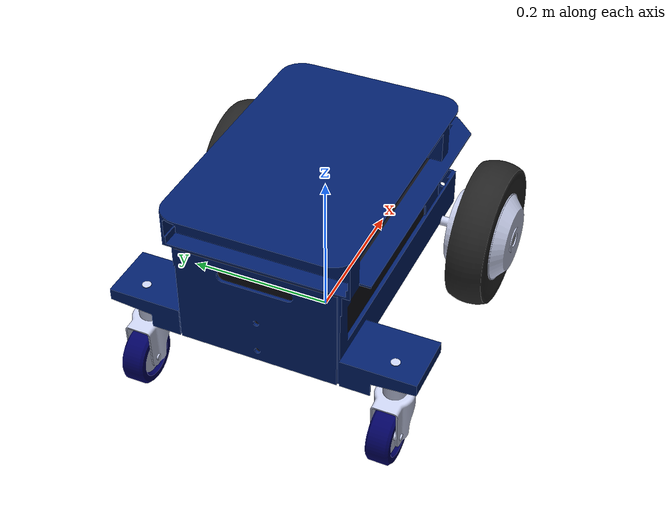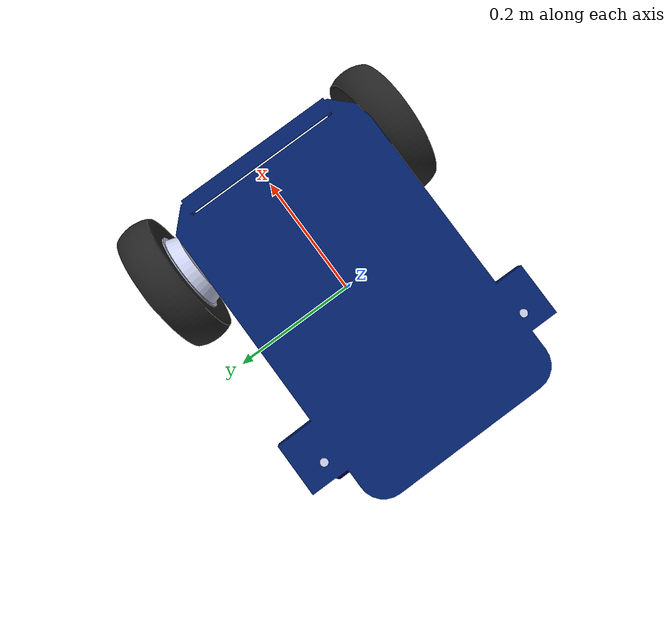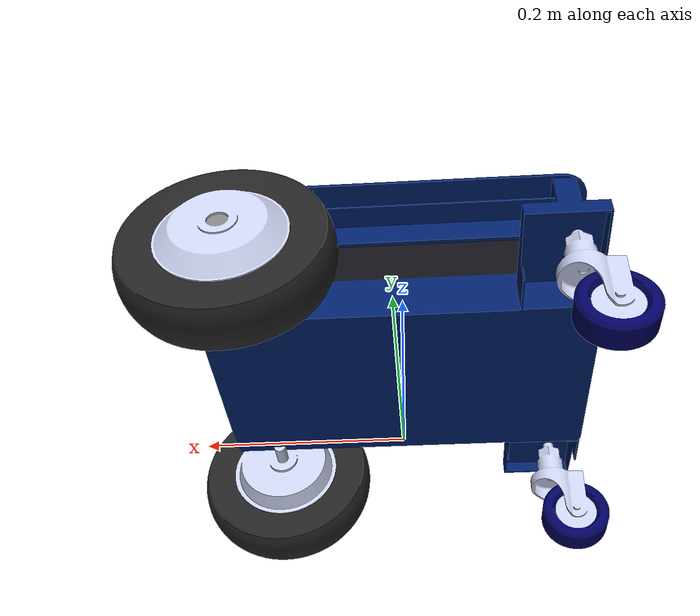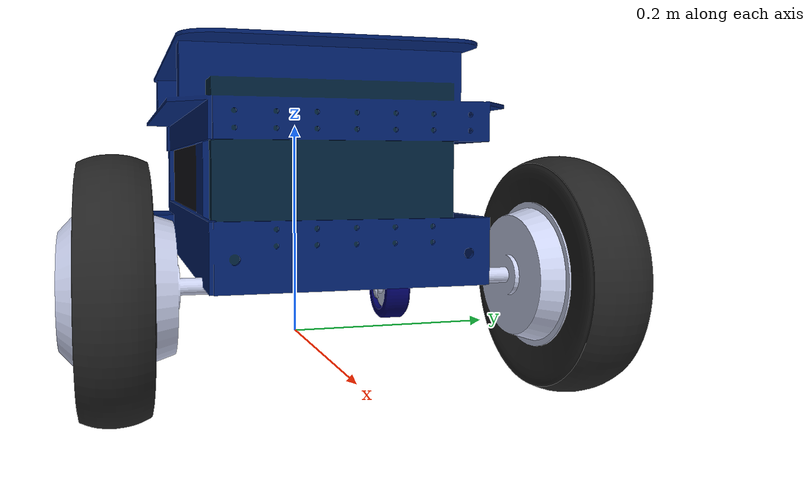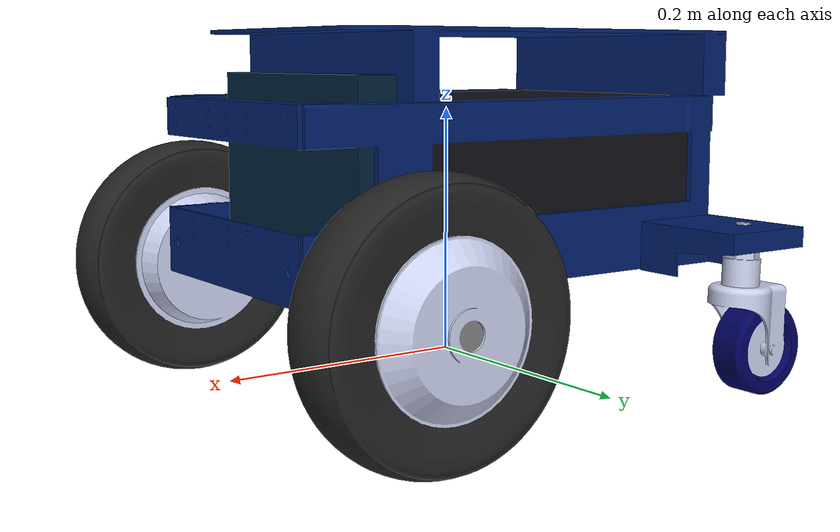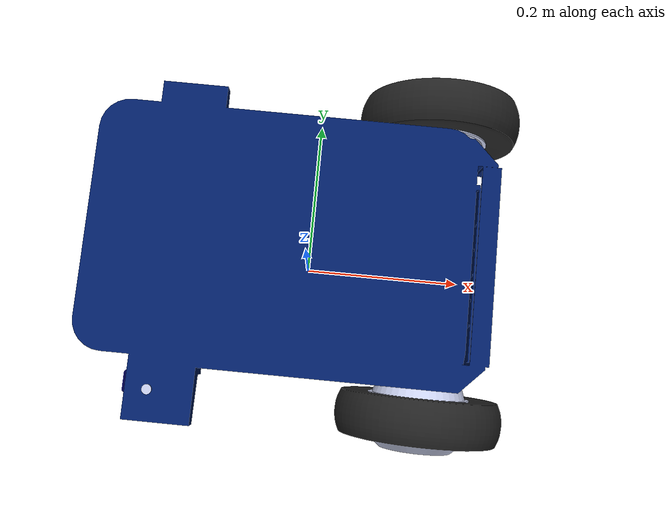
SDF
<?xml version="1.0" ?>
<sdf version="1.9" >

<model name='magni' >
  <link name="base_footprint" />
  <joint name="base_footprint_joint" type="fixed" >
    <parent>base_footprint</parent>
    <child>base_link</child>
  </joint>
  <link name="base_link" >
      <pose>0 0 0.07 0 0 0</pose>
      <inertial>
        <mass>10.0</mass>
        <pose>-0.15 0 0.03 0 0 0 </pose>
        <inertia>
          <ixx>0.059450809553</ixx>
          <ixy>0.0</ixy>
          <ixz>0.0</ixz>
          <iyy>0.150753273032</iyy>
          <iyz>0.0</iyz>
          <izz>0.17270409758500002</izz>
        </inertia>
      </inertial>

      <visual name='base_visual'>
          <geometry>
            <mesh>
              <uri>model://magni/meshes/magni_body.dae</uri>
            </mesh>
          </geometry>
      </visual>

      <collision name='base_collider_1'>
        <pose>0 0 0.05099999999999999 0 0 0</pose>
        <geometry>
          <box> <size>0.398 0.268 0.160</size></box>
        </geometry>
      </collision>

      <collision name='base_collider_2'>
        <pose>-0.026 0 0.148 0 0 0</pose>
        <geometry>
          <box> <size>0.375 0.268 0.034</size></box>
        </geometry>
      </collision>

      <collision name='base_collider_3'>
        <pose>-0.169 0.169 0.0059999999999999915 0 0 0</pose>
        <geometry>
          <box><size>0.1 0.07 0.07</size></box>
        </geometry>
      </collision>

      <collision name='base_collider_4'>
        <pose>-0.169 -0.169 0.0059999999999999915 0 0 0</pose>
        <geometry>
          <box><size>0.1 0.07 0.07</size></box>
        </geometry>
      </collision>
  </link>

  <!-- LEFT WHEEL -->

  <link name="left_wheel">
    <collision name="left_wheel_collider">
      <pose>0.063 0 0 0 1.5707963267948966 0</pose>
      <geometry>
        <cylinder>
         <length>0.01</length>
         <radius>0.1</radius>
        </cylinder>
      </geometry>
    </collision>

    <visual name="left_wheel_vis">
      <pose>-0.0 0 0 0 0 0</pose>
      <geometry>
        <mesh>
          <uri>model://magni/meshes/front_wheel.dae</uri>
        </mesh>
      </geometry>
    </visual>

    <inertial>
      <mass>1.34</mass>
      <pose>0 0 0 0 1.5707963267948966 0</pose>
      <inertia>
       <ixx>0.003629165215000001</ixx>
       <ixy>0.0</ixy>
       <ixz>0.0</ixz>
       <iyy>0.003629165215000001</iyy>
       <iyz>0.0</iyz>
       <izz>0.006700000000000001</izz>
      </inertia>
    </inertial>

    <pose>0.15 0.123 0.07 0 0 1.5707963267948966</pose>

  </link>

  <joint name="left_wheel_joint" type="revolute">
    <axis><xyz>1 0 0</xyz></axis>
    <parent>base_link</parent>
    <child>left_wheel</child>
  </joint>

  <!-- RIGHT WHEEL -->

  <link name="right_wheel">
    <collision name="right_wheel_collider">
      <pose>0.093 0 0 0 1.5707963267948966 0</pose>
      <geometry>
        <cylinder>
         <length>0.01</length>
         <radius>0.1</radius>
        </cylinder>
      </geometry>
    </collision>

    <visual name="right_wheel_vis">
      <pose>0.03 0 0 0 0 0</pose>
      <geometry>
        <mesh>
          <uri>model://magni/meshes/front_wheel.dae</uri>
        </mesh>
      </geometry>
    </visual>

    <inertial>
      <mass>1.34</mass>
      <pose>0 0 0 0 1.5707963267948966 0</pose>
      <inertia>
       <ixx>0.003629165215000001</ixx>
       <ixy>0.0</ixy>
       <ixz>0.0</ixz>
       <iyy>0.003629165215000001</iyy>
       <iyz>0.0</iyz>
       <izz>0.006700000000000001</izz>
      </inertia>
    </inertial>

    <pose>0.15 -0.0715 0.07 0 0 -1.5707963267948966</pose>

  </link>

  <joint name="right_wheel_joint" type="revolute">
    <axis><xyz>-1 0 0</xyz></axis>
    <parent>base_link</parent>
    <child>right_wheel</child>
  </joint>

  <!-- LEFT CASTER WHEEL -->

  <link name="left_caster_wheel">
    <collision name="left_caster_wheel_collider">
      <pose>0 0 -0.06 0 0 0</pose>
      <geometry>
        <sphere>
         <radius>0.04</radius>
        </sphere>
      </geometry>
      <surface>
        <friction>
          <ode>
            <mu>0.01</mu>
          </ode>
        </friction>
      </surface>
    </collision>

    <visual name="left_caster_wheel_vis">
      <geometry>
        <mesh>
          <uri>model://magni/meshes/caster_wheel.dae</uri>
        </mesh>
      </geometry>
    </visual>

    <pose>-0.17 0.168 0.06 0 0 3.141</pose>
  </link>

  <joint name="left_caster_wheel_joint" type="fixed">
    <parent>base_link</parent>
    <child>left_caster_wheel</child>
  </joint>

  <!-- RIGHT CASTER WHEEL -->

  <link name="right_caster_wheel">
    <collision name="right_caster_wheel_collider">
      <pose>0 0 -0.06 0 0 0</pose>
      <geometry>
        <sphere>
         <radius>0.04</radius>
        </sphere>
      </geometry>
      <surface>
          <friction>
            <ode>
              <mu>0.01</mu>
            </ode>
          </friction>
        </surface>
    </collision>

    <visual name="right_caster_wheel_vis">
      <geometry>
        <mesh>
          <uri>model://magni/meshes/caster_wheel.dae</uri>
        </mesh>
      </geometry>
    </visual>

    <pose>-0.17 -0.169 0.06 0 0 3.141</pose>
  </link>

  <joint name="right_caster_wheel_joint" type="fixed">
    <parent>base_link</parent>
    <child>right_caster_wheel</child>
  </joint>

</model>
</sdf>
